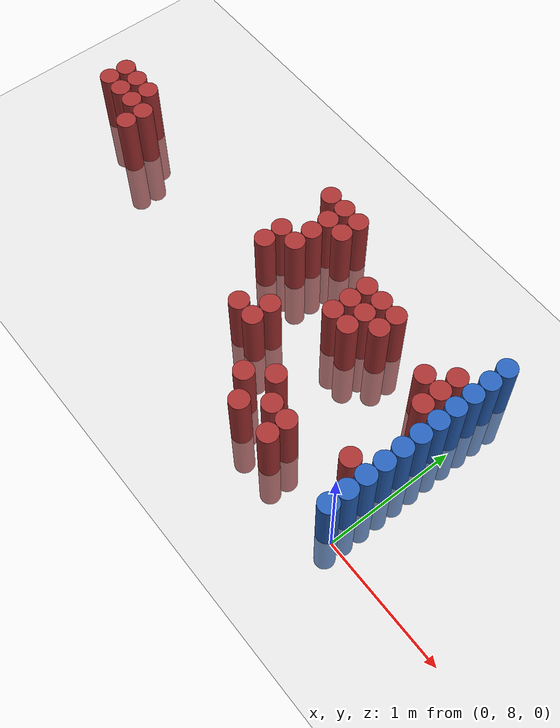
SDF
<sdf version="1.6">
 <world name="default">
  <model name="ground_plane">
   <static>1</static>
   <link name="link">
    <collision name="collision">
     <geometry><plane><normal>0 0 1</normal><size>100 100</size></plane></geometry>
     <surface><friction><ode><mu>100</mu><mu2>50</mu2></ode></friction></surface>
    </collision>
    <visual name="visual">
     <cast_shadows>0</cast_shadows>
     <geometry><plane><normal>0 0 1</normal><size>100 100</size></plane></geometry>
     <material>
      <script><uri>file://media/materials/scripts/gazebo.material</uri><name>Gazebo/Grey</name></script>
     </material>
    </visual>
   </link>
  </model>
  <model name="unit_cylinder_149">
   <static>1</static>
   <pose>-3.825000 8.925000 0.000000 0.000000 0.000000 0.000000</pose>
   <link name="link">
    <inertial>
     <mass>1</mass>
     <inertia><ixx>0.145833</ixx><ixy>0</ixy><ixz>0</ixz><iyy>0.145833</iyy><iyz>0</iyz><izz>0.125</izz></inertia>
    </inertial>
    <collision name="collision">
     <geometry><cylinder><radius>0.075000</radius><length>1</length></cylinder></geometry>
    </collision>
    <visual name="visual">
     <geometry><cylinder><radius>0.075000</radius><length>1</length></cylinder></geometry>
     <material>
      <ambient>0.648000 0.192000 0.192000 1</ambient>
      <diffuse>0.648000 0.192000 0.192000 1</diffuse>
     </material>
     <material>
      <script><name>Gazebo/Grey</name><uri>file://media/materials/scripts/gazebo.material</uri></script>
     </material>
    </visual>
   </link>
  </model>
  <model name="unit_cylinder_150">
   <static>1</static>
   <pose>-3.825000 9.075000 0.000000 0.000000 0.000000 0.000000</pose>
   <link name="link">
    <inertial>
     <mass>1</mass>
     <inertia><ixx>0.145833</ixx><ixy>0</ixy><ixz>0</ixz><iyy>0.145833</iyy><iyz>0</iyz><izz>0.125</izz></inertia>
    </inertial>
    <collision name="collision">
     <geometry><cylinder><radius>0.075000</radius><length>1</length></cylinder></geometry>
    </collision>
    <visual name="visual">
     <geometry><cylinder><radius>0.075000</radius><length>1</length></cylinder></geometry>
     <material>
      <ambient>0.648000 0.192000 0.192000 1</ambient>
      <diffuse>0.648000 0.192000 0.192000 1</diffuse>
     </material>
     <material>
      <script><name>Gazebo/Grey</name><uri>file://media/materials/scripts/gazebo.material</uri></script>
     </material>
    </visual>
   </link>
  </model>
  <model name="unit_cylinder_152">
   <static>1</static>
   <pose>-3.675000 8.925000 0.000000 0.000000 0.000000 0.000000</pose>
   <link name="link">
    <inertial>
     <mass>1</mass>
     <inertia><ixx>0.145833</ixx><ixy>0</ixy><ixz>0</ixz><iyy>0.145833</iyy><iyz>0</iyz><izz>0.125</izz></inertia>
    </inertial>
    <collision name="collision">
     <geometry><cylinder><radius>0.075000</radius><length>1</length></cylinder></geometry>
    </collision>
    <visual name="visual">
     <geometry><cylinder><radius>0.075000</radius><length>1</length></cylinder></geometry>
     <material>
      <ambient>0.648000 0.192000 0.192000 1</ambient>
      <diffuse>0.648000 0.192000 0.192000 1</diffuse>
     </material>
     <material>
      <script><name>Gazebo/Grey</name><uri>file://media/materials/scripts/gazebo.material</uri></script>
     </material>
    </visual>
   </link>
  </model>
  <model name="unit_cylinder_153">
   <static>1</static>
   <pose>-3.675000 9.075000 0.000000 0.000000 0.000000 0.000000</pose>
   <link name="link">
    <inertial>
     <mass>1</mass>
     <inertia><ixx>0.145833</ixx><ixy>0</ixy><ixz>0</ixz><iyy>0.145833</iyy><iyz>0</iyz><izz>0.125</izz></inertia>
    </inertial>
    <collision name="collision">
     <geometry><cylinder><radius>0.075000</radius><length>1</length></cylinder></geometry>
    </collision>
    <visual name="visual">
     <geometry><cylinder><radius>0.075000</radius><length>1</length></cylinder></geometry>
     <material>
      <ambient>0.648000 0.192000 0.192000 1</ambient>
      <diffuse>0.648000 0.192000 0.192000 1</diffuse>
     </material>
     <material>
      <script><name>Gazebo/Grey</name><uri>file://media/materials/scripts/gazebo.material</uri></script>
     </material>
    </visual>
   </link>
  </model>
  <model name="unit_cylinder_155">
   <static>1</static>
   <pose>-3.525000 8.925000 0.000000 0.000000 0.000000 0.000000</pose>
   <link name="link">
    <inertial>
     <mass>1</mass>
     <inertia><ixx>0.145833</ixx><ixy>0</ixy><ixz>0</ixz><iyy>0.145833</iyy><iyz>0</iyz><izz>0.125</izz></inertia>
    </inertial>
    <collision name="collision">
     <geometry><cylinder><radius>0.075000</radius><length>1</length></cylinder></geometry>
    </collision>
    <visual name="visual">
     <geometry><cylinder><radius>0.075000</radius><length>1</length></cylinder></geometry>
     <material>
      <ambient>0.648000 0.192000 0.192000 1</ambient>
      <diffuse>0.648000 0.192000 0.192000 1</diffuse>
     </material>
     <material>
      <script><name>Gazebo/Grey</name><uri>file://media/materials/scripts/gazebo.material</uri></script>
     </material>
    </visual>
   </link>
  </model>
  <model name="unit_cylinder_156">
   <static>1</static>
   <pose>-3.525000 9.075000 0.000000 0.000000 0.000000 0.000000</pose>
   <link name="link">
    <inertial>
     <mass>1</mass>
     <inertia><ixx>0.145833</ixx><ixy>0</ixy><ixz>0</ixz><iyy>0.145833</iyy><iyz>0</iyz><izz>0.125</izz></inertia>
    </inertial>
    <collision name="collision">
     <geometry><cylinder><radius>0.075000</radius><length>1</length></cylinder></geometry>
    </collision>
    <visual name="visual">
     <geometry><cylinder><radius>0.075000</radius><length>1</length></cylinder></geometry>
     <material>
      <ambient>0.648000 0.192000 0.192000 1</ambient>
      <diffuse>0.648000 0.192000 0.192000 1</diffuse>
     </material>
     <material>
      <script><name>Gazebo/Grey</name><uri>file://media/materials/scripts/gazebo.material</uri></script>
     </material>
    </visual>
   </link>
  </model>
  <model name="unit_cylinder_159">
   <static>1</static>
   <pose>-3.375000 8.775000 0.000000 0.000000 0.000000 0.000000</pose>
   <link name="link">
    <inertial>
     <mass>1</mass>
     <inertia><ixx>0.145833</ixx><ixy>0</ixy><ixz>0</ixz><iyy>0.145833</iyy><iyz>0</iyz><izz>0.125</izz></inertia>
    </inertial>
    <collision name="collision">
     <geometry><cylinder><radius>0.075000</radius><length>1</length></cylinder></geometry>
    </collision>
    <visual name="visual">
     <geometry><cylinder><radius>0.075000</radius><length>1</length></cylinder></geometry>
     <material>
      <ambient>0.648000 0.192000 0.192000 1</ambient>
      <diffuse>0.648000 0.192000 0.192000 1</diffuse>
     </material>
     <material>
      <script><name>Gazebo/Grey</name><uri>file://media/materials/scripts/gazebo.material</uri></script>
     </material>
    </visual>
   </link>
  </model>
  <model name="unit_cylinder_160">
   <static>1</static>
   <pose>-3.375000 8.925000 0.000000 0.000000 0.000000 0.000000</pose>
   <link name="link">
    <inertial>
     <mass>1</mass>
     <inertia><ixx>0.145833</ixx><ixy>0</ixy><ixz>0</ixz><iyy>0.145833</iyy><iyz>0</iyz><izz>0.125</izz></inertia>
    </inertial>
    <collision name="collision">
     <geometry><cylinder><radius>0.075000</radius><length>1</length></cylinder></geometry>
    </collision>
    <visual name="visual">
     <geometry><cylinder><radius>0.075000</radius><length>1</length></cylinder></geometry>
     <material>
      <ambient>0.648000 0.192000 0.192000 1</ambient>
      <diffuse>0.648000 0.192000 0.192000 1</diffuse>
     </material>
     <material>
      <script><name>Gazebo/Grey</name><uri>file://media/materials/scripts/gazebo.material</uri></script>
     </material>
    </visual>
   </link>
  </model>
  <model name="unit_cylinder_175">
   <static>1</static>
   <pose>-1.875000 8.925000 0.000000 0.000000 0.000000 0.000000</pose>
   <link name="link">
    <inertial>
     <mass>1</mass>
     <inertia><ixx>0.145833</ixx><ixy>0</ixy><ixz>0</ixz><iyy>0.145833</iyy><iyz>0</iyz><izz>0.125</izz></inertia>
    </inertial>
    <collision name="collision">
     <geometry><cylinder><radius>0.075000</radius><length>1</length></cylinder></geometry>
    </collision>
    <visual name="visual">
     <geometry><cylinder><radius>0.075000</radius><length>1</length></cylinder></geometry>
     <material>
      <ambient>0.648000 0.192000 0.192000 1</ambient>
      <diffuse>0.648000 0.192000 0.192000 1</diffuse>
     </material>
     <material>
      <script><name>Gazebo/Grey</name><uri>file://media/materials/scripts/gazebo.material</uri></script>
     </material>
    </visual>
   </link>
  </model>
  <model name="unit_cylinder_176">
   <static>1</static>
   <pose>-1.875000 9.075000 0.000000 0.000000 0.000000 0.000000</pose>
   <link name="link">
    <inertial>
     <mass>1</mass>
     <inertia><ixx>0.145833</ixx><ixy>0</ixy><ixz>0</ixz><iyy>0.145833</iyy><iyz>0</iyz><izz>0.125</izz></inertia>
    </inertial>
    <collision name="collision">
     <geometry><cylinder><radius>0.075000</radius><length>1</length></cylinder></geometry>
    </collision>
    <visual name="visual">
     <geometry><cylinder><radius>0.075000</radius><length>1</length></cylinder></geometry>
     <material>
      <ambient>0.648000 0.192000 0.192000 1</ambient>
      <diffuse>0.648000 0.192000 0.192000 1</diffuse>
     </material>
     <material>
      <script><name>Gazebo/Grey</name><uri>file://media/materials/scripts/gazebo.material</uri></script>
     </material>
    </visual>
   </link>
  </model>
  <model name="unit_cylinder_177">
   <static>1</static>
   <pose>-1.875000 9.525000 0.000000 0.000000 0.000000 0.000000</pose>
   <link name="link">
    <inertial>
     <mass>1</mass>
     <inertia><ixx>0.145833</ixx><ixy>0</ixy><ixz>0</ixz><iyy>0.145833</iyy><iyz>0</iyz><izz>0.125</izz></inertia>
    </inertial>
    <collision name="collision">
     <geometry><cylinder><radius>0.075000</radius><length>1</length></cylinder></geometry>
    </collision>
    <visual name="visual">
     <geometry><cylinder><radius>0.075000</radius><length>1</length></cylinder></geometry>
     <material>
      <ambient>0.648000 0.192000 0.192000 1</ambient>
      <diffuse>0.648000 0.192000 0.192000 1</diffuse>
     </material>
     <material>
      <script><name>Gazebo/Grey</name><uri>file://media/materials/scripts/gazebo.material</uri></script>
     </material>
    </visual>
   </link>
  </model>
  <model name="unit_cylinder_179">
   <static>1</static>
   <pose>-1.725000 9.075000 0.000000 0.000000 0.000000 0.000000</pose>
   <link name="link">
    <inertial>
     <mass>1</mass>
     <inertia><ixx>0.145833</ixx><ixy>0</ixy><ixz>0</ixz><iyy>0.145833</iyy><iyz>0</iyz><izz>0.125</izz></inertia>
    </inertial>
    <collision name="collision">
     <geometry><cylinder><radius>0.075000</radius><length>1</length></cylinder></geometry>
    </collision>
    <visual name="visual">
     <geometry><cylinder><radius>0.075000</radius><length>1</length></cylinder></geometry>
     <material>
      <ambient>0.648000 0.192000 0.192000 1</ambient>
      <diffuse>0.648000 0.192000 0.192000 1</diffuse>
     </material>
     <material>
      <script><name>Gazebo/Grey</name><uri>file://media/materials/scripts/gazebo.material</uri></script>
     </material>
    </visual>
   </link>
  </model>
  <model name="unit_cylinder_180">
   <static>1</static>
   <pose>-1.725000 9.225000 0.000000 0.000000 0.000000 0.000000</pose>
   <link name="link">
    <inertial>
     <mass>1</mass>
     <inertia><ixx>0.145833</ixx><ixy>0</ixy><ixz>0</ixz><iyy>0.145833</iyy><iyz>0</iyz><izz>0.125</izz></inertia>
    </inertial>
    <collision name="collision">
     <geometry><cylinder><radius>0.075000</radius><length>1</length></cylinder></geometry>
    </collision>
    <visual name="visual">
     <geometry><cylinder><radius>0.075000</radius><length>1</length></cylinder></geometry>
     <material>
      <ambient>0.648000 0.192000 0.192000 1</ambient>
      <diffuse>0.648000 0.192000 0.192000 1</diffuse>
     </material>
     <material>
      <script><name>Gazebo/Grey</name><uri>file://media/materials/scripts/gazebo.material</uri></script>
     </material>
    </visual>
   </link>
  </model>
  <model name="unit_cylinder_181">
   <static>1</static>
   <pose>-1.725000 9.375000 0.000000 0.000000 0.000000 0.000000</pose>
   <link name="link">
    <inertial>
     <mass>1</mass>
     <inertia><ixx>0.145833</ixx><ixy>0</ixy><ixz>0</ixz><iyy>0.145833</iyy><iyz>0</iyz><izz>0.125</izz></inertia>
    </inertial>
    <collision name="collision">
     <geometry><cylinder><radius>0.075000</radius><length>1</length></cylinder></geometry>
    </collision>
    <visual name="visual">
     <geometry><cylinder><radius>0.075000</radius><length>1</length></cylinder></geometry>
     <material>
      <ambient>0.648000 0.192000 0.192000 1</ambient>
      <diffuse>0.648000 0.192000 0.192000 1</diffuse>
     </material>
     <material>
      <script><name>Gazebo/Grey</name><uri>file://media/materials/scripts/gazebo.material</uri></script>
     </material>
    </visual>
   </link>
  </model>
  <model name="unit_cylinder_182">
   <static>1</static>
   <pose>-1.725000 9.525000 0.000000 0.000000 0.000000 0.000000</pose>
   <link name="link">
    <inertial>
     <mass>1</mass>
     <inertia><ixx>0.145833</ixx><ixy>0</ixy><ixz>0</ixz><iyy>0.145833</iyy><iyz>0</iyz><izz>0.125</izz></inertia>
    </inertial>
    <collision name="collision">
     <geometry><cylinder><radius>0.075000</radius><length>1</length></cylinder></geometry>
    </collision>
    <visual name="visual">
     <geometry><cylinder><radius>0.075000</radius><length>1</length></cylinder></geometry>
     <material>
      <ambient>0.648000 0.192000 0.192000 1</ambient>
      <diffuse>0.648000 0.192000 0.192000 1</diffuse>
     </material>
     <material>
      <script><name>Gazebo/Grey</name><uri>file://media/materials/scripts/gazebo.material</uri></script>
     </material>
    </visual>
   </link>
  </model>
  <model name="unit_cylinder_185">
   <static>1</static>
   <pose>-1.575000 8.475000 0.000000 0.000000 0.000000 0.000000</pose>
   <link name="link">
    <inertial>
     <mass>1</mass>
     <inertia><ixx>0.145833</ixx><ixy>0</ixy><ixz>0</ixz><iyy>0.145833</iyy><iyz>0</iyz><izz>0.125</izz></inertia>
    </inertial>
    <collision name="collision">
     <geometry><cylinder><radius>0.075000</radius><length>1</length></cylinder></geometry>
    </collision>
    <visual name="visual">
     <geometry><cylinder><radius>0.075000</radius><length>1</length></cylinder></geometry>
     <material>
      <ambient>0.648000 0.192000 0.192000 1</ambient>
      <diffuse>0.648000 0.192000 0.192000 1</diffuse>
     </material>
     <material>
      <script><name>Gazebo/Grey</name><uri>file://media/materials/scripts/gazebo.material</uri></script>
     </material>
    </visual>
   </link>
  </model>
  <model name="unit_cylinder_186">
   <static>1</static>
   <pose>-1.575000 9.375000 0.000000 0.000000 0.000000 0.000000</pose>
   <link name="link">
    <inertial>
     <mass>1</mass>
     <inertia><ixx>0.145833</ixx><ixy>0</ixy><ixz>0</ixz><iyy>0.145833</iyy><iyz>0</iyz><izz>0.125</izz></inertia>
    </inertial>
    <collision name="collision">
     <geometry><cylinder><radius>0.075000</radius><length>1</length></cylinder></geometry>
    </collision>
    <visual name="visual">
     <geometry><cylinder><radius>0.075000</radius><length>1</length></cylinder></geometry>
     <material>
      <ambient>0.648000 0.192000 0.192000 1</ambient>
      <diffuse>0.648000 0.192000 0.192000 1</diffuse>
     </material>
     <material>
      <script><name>Gazebo/Grey</name><uri>file://media/materials/scripts/gazebo.material</uri></script>
     </material>
    </visual>
   </link>
  </model>
  <model name="unit_cylinder_187">
   <static>1</static>
   <pose>-1.575000 9.525000 0.000000 0.000000 0.000000 0.000000</pose>
   <link name="link">
    <inertial>
     <mass>1</mass>
     <inertia><ixx>0.145833</ixx><ixy>0</ixy><ixz>0</ixz><iyy>0.145833</iyy><iyz>0</iyz><izz>0.125</izz></inertia>
    </inertial>
    <collision name="collision">
     <geometry><cylinder><radius>0.075000</radius><length>1</length></cylinder></geometry>
    </collision>
    <visual name="visual">
     <geometry><cylinder><radius>0.075000</radius><length>1</length></cylinder></geometry>
     <material>
      <ambient>0.648000 0.192000 0.192000 1</ambient>
      <diffuse>0.648000 0.192000 0.192000 1</diffuse>
     </material>
     <material>
      <script><name>Gazebo/Grey</name><uri>file://media/materials/scripts/gazebo.material</uri></script>
     </material>
    </visual>
   </link>
  </model>
  <model name="unit_cylinder_191">
   <static>1</static>
   <pose>-1.425000 8.475000 0.000000 0.000000 0.000000 0.000000</pose>
   <link name="link">
    <inertial>
     <mass>1</mass>
     <inertia><ixx>0.145833</ixx><ixy>0</ixy><ixz>0</ixz><iyy>0.145833</iyy><iyz>0</iyz><izz>0.125</izz></inertia>
    </inertial>
    <collision name="collision">
     <geometry><cylinder><radius>0.075000</radius><length>1</length></cylinder></geometry>
    </collision>
    <visual name="visual">
     <geometry><cylinder><radius>0.075000</radius><length>1</length></cylinder></geometry>
     <material>
      <ambient>0.648000 0.192000 0.192000 1</ambient>
      <diffuse>0.648000 0.192000 0.192000 1</diffuse>
     </material>
     <material>
      <script><name>Gazebo/Grey</name><uri>file://media/materials/scripts/gazebo.material</uri></script>
     </material>
    </visual>
   </link>
  </model>
  <model name="unit_cylinder_192">
   <static>1</static>
   <pose>-1.425000 8.625000 0.000000 0.000000 0.000000 0.000000</pose>
   <link name="link">
    <inertial>
     <mass>1</mass>
     <inertia><ixx>0.145833</ixx><ixy>0</ixy><ixz>0</ixz><iyy>0.145833</iyy><iyz>0</iyz><izz>0.125</izz></inertia>
    </inertial>
    <collision name="collision">
     <geometry><cylinder><radius>0.075000</radius><length>1</length></cylinder></geometry>
    </collision>
    <visual name="visual">
     <geometry><cylinder><radius>0.075000</radius><length>1</length></cylinder></geometry>
     <material>
      <ambient>0.648000 0.192000 0.192000 1</ambient>
      <diffuse>0.648000 0.192000 0.192000 1</diffuse>
     </material>
     <material>
      <script><name>Gazebo/Grey</name><uri>file://media/materials/scripts/gazebo.material</uri></script>
     </material>
    </visual>
   </link>
  </model>
  <model name="unit_cylinder_196">
   <static>1</static>
   <pose>-1.125000 8.175000 0.000000 0.000000 0.000000 0.000000</pose>
   <link name="link">
    <inertial>
     <mass>1</mass>
     <inertia><ixx>0.145833</ixx><ixy>0</ixy><ixz>0</ixz><iyy>0.145833</iyy><iyz>0</iyz><izz>0.125</izz></inertia>
    </inertial>
    <collision name="collision">
     <geometry><cylinder><radius>0.075000</radius><length>1</length></cylinder></geometry>
    </collision>
    <visual name="visual">
     <geometry><cylinder><radius>0.075000</radius><length>1</length></cylinder></geometry>
     <material>
      <ambient>0.648000 0.192000 0.192000 1</ambient>
      <diffuse>0.648000 0.192000 0.192000 1</diffuse>
     </material>
     <material>
      <script><name>Gazebo/Grey</name><uri>file://media/materials/scripts/gazebo.material</uri></script>
     </material>
    </visual>
   </link>
  </model>
  <model name="unit_cylinder_197">
   <static>1</static>
   <pose>-1.125000 8.925000 0.000000 0.000000 0.000000 0.000000</pose>
   <link name="link">
    <inertial>
     <mass>1</mass>
     <inertia><ixx>0.145833</ixx><ixy>0</ixy><ixz>0</ixz><iyy>0.145833</iyy><iyz>0</iyz><izz>0.125</izz></inertia>
    </inertial>
    <collision name="collision">
     <geometry><cylinder><radius>0.075000</radius><length>1</length></cylinder></geometry>
    </collision>
    <visual name="visual">
     <geometry><cylinder><radius>0.075000</radius><length>1</length></cylinder></geometry>
     <material>
      <ambient>0.648000 0.192000 0.192000 1</ambient>
      <diffuse>0.648000 0.192000 0.192000 1</diffuse>
     </material>
     <material>
      <script><name>Gazebo/Grey</name><uri>file://media/materials/scripts/gazebo.material</uri></script>
     </material>
    </visual>
   </link>
  </model>
  <model name="unit_cylinder_198">
   <static>1</static>
   <pose>-1.125000 9.075000 0.000000 0.000000 0.000000 0.000000</pose>
   <link name="link">
    <inertial>
     <mass>1</mass>
     <inertia><ixx>0.145833</ixx><ixy>0</ixy><ixz>0</ixz><iyy>0.145833</iyy><iyz>0</iyz><izz>0.125</izz></inertia>
    </inertial>
    <collision name="collision">
     <geometry><cylinder><radius>0.075000</radius><length>1</length></cylinder></geometry>
    </collision>
    <visual name="visual">
     <geometry><cylinder><radius>0.075000</radius><length>1</length></cylinder></geometry>
     <material>
      <ambient>0.648000 0.192000 0.192000 1</ambient>
      <diffuse>0.648000 0.192000 0.192000 1</diffuse>
     </material>
     <material>
      <script><name>Gazebo/Grey</name><uri>file://media/materials/scripts/gazebo.material</uri></script>
     </material>
    </visual>
   </link>
  </model>
  <model name="unit_cylinder_199">
   <static>1</static>
   <pose>-1.125000 9.225000 0.000000 0.000000 0.000000 0.000000</pose>
   <link name="link">
    <inertial>
     <mass>1</mass>
     <inertia><ixx>0.145833</ixx><ixy>0</ixy><ixz>0</ixz><iyy>0.145833</iyy><iyz>0</iyz><izz>0.125</izz></inertia>
    </inertial>
    <collision name="collision">
     <geometry><cylinder><radius>0.075000</radius><length>1</length></cylinder></geometry>
    </collision>
    <visual name="visual">
     <geometry><cylinder><radius>0.075000</radius><length>1</length></cylinder></geometry>
     <material>
      <ambient>0.648000 0.192000 0.192000 1</ambient>
      <diffuse>0.648000 0.192000 0.192000 1</diffuse>
     </material>
     <material>
      <script><name>Gazebo/Grey</name><uri>file://media/materials/scripts/gazebo.material</uri></script>
     </material>
    </visual>
   </link>
  </model>
  <model name="unit_cylinder_200">
   <static>1</static>
   <pose>-0.975000 8.025000 0.000000 0.000000 0.000000 0.000000</pose>
   <link name="link">
    <inertial>
     <mass>1</mass>
     <inertia><ixx>0.145833</ixx><ixy>0</ixy><ixz>0</ixz><iyy>0.145833</iyy><iyz>0</iyz><izz>0.125</izz></inertia>
    </inertial>
    <collision name="collision">
     <geometry><cylinder><radius>0.075000</radius><length>1</length></cylinder></geometry>
    </collision>
    <visual name="visual">
     <geometry><cylinder><radius>0.075000</radius><length>1</length></cylinder></geometry>
     <material>
      <ambient>0.648000 0.192000 0.192000 1</ambient>
      <diffuse>0.648000 0.192000 0.192000 1</diffuse>
     </material>
     <material>
      <script><name>Gazebo/Grey</name><uri>file://media/materials/scripts/gazebo.material</uri></script>
     </material>
    </visual>
   </link>
  </model>
  <model name="unit_cylinder_201">
   <static>1</static>
   <pose>-0.975000 8.325000 0.000000 0.000000 0.000000 0.000000</pose>
   <link name="link">
    <inertial>
     <mass>1</mass>
     <inertia><ixx>0.145833</ixx><ixy>0</ixy><ixz>0</ixz><iyy>0.145833</iyy><iyz>0</iyz><izz>0.125</izz></inertia>
    </inertial>
    <collision name="collision">
     <geometry><cylinder><radius>0.075000</radius><length>1</length></cylinder></geometry>
    </collision>
    <visual name="visual">
     <geometry><cylinder><radius>0.075000</radius><length>1</length></cylinder></geometry>
     <material>
      <ambient>0.648000 0.192000 0.192000 1</ambient>
      <diffuse>0.648000 0.192000 0.192000 1</diffuse>
     </material>
     <material>
      <script><name>Gazebo/Grey</name><uri>file://media/materials/scripts/gazebo.material</uri></script>
     </material>
    </visual>
   </link>
  </model>
  <model name="unit_cylinder_202">
   <static>1</static>
   <pose>-0.975000 8.925000 0.000000 0.000000 0.000000 0.000000</pose>
   <link name="link">
    <inertial>
     <mass>1</mass>
     <inertia><ixx>0.145833</ixx><ixy>0</ixy><ixz>0</ixz><iyy>0.145833</iyy><iyz>0</iyz><izz>0.125</izz></inertia>
    </inertial>
    <collision name="collision">
     <geometry><cylinder><radius>0.075000</radius><length>1</length></cylinder></geometry>
    </collision>
    <visual name="visual">
     <geometry><cylinder><radius>0.075000</radius><length>1</length></cylinder></geometry>
     <material>
      <ambient>0.648000 0.192000 0.192000 1</ambient>
      <diffuse>0.648000 0.192000 0.192000 1</diffuse>
     </material>
     <material>
      <script><name>Gazebo/Grey</name><uri>file://media/materials/scripts/gazebo.material</uri></script>
     </material>
    </visual>
   </link>
  </model>
  <model name="unit_cylinder_203">
   <static>1</static>
   <pose>-0.975000 9.075000 0.000000 0.000000 0.000000 0.000000</pose>
   <link name="link">
    <inertial>
     <mass>1</mass>
     <inertia><ixx>0.145833</ixx><ixy>0</ixy><ixz>0</ixz><iyy>0.145833</iyy><iyz>0</iyz><izz>0.125</izz></inertia>
    </inertial>
    <collision name="collision">
     <geometry><cylinder><radius>0.075000</radius><length>1</length></cylinder></geometry>
    </collision>
    <visual name="visual">
     <geometry><cylinder><radius>0.075000</radius><length>1</length></cylinder></geometry>
     <material>
      <ambient>0.648000 0.192000 0.192000 1</ambient>
      <diffuse>0.648000 0.192000 0.192000 1</diffuse>
     </material>
     <material>
      <script><name>Gazebo/Grey</name><uri>file://media/materials/scripts/gazebo.material</uri></script>
     </material>
    </visual>
   </link>
  </model>
  <model name="unit_cylinder_204">
   <static>1</static>
   <pose>-0.975000 9.225000 0.000000 0.000000 0.000000 0.000000</pose>
   <link name="link">
    <inertial>
     <mass>1</mass>
     <inertia><ixx>0.145833</ixx><ixy>0</ixy><ixz>0</ixz><iyy>0.145833</iyy><iyz>0</iyz><izz>0.125</izz></inertia>
    </inertial>
    <collision name="collision">
     <geometry><cylinder><radius>0.075000</radius><length>1</length></cylinder></geometry>
    </collision>
    <visual name="visual">
     <geometry><cylinder><radius>0.075000</radius><length>1</length></cylinder></geometry>
     <material>
      <ambient>0.648000 0.192000 0.192000 1</ambient>
      <diffuse>0.648000 0.192000 0.192000 1</diffuse>
     </material>
     <material>
      <script><name>Gazebo/Grey</name><uri>file://media/materials/scripts/gazebo.material</uri></script>
     </material>
    </visual>
   </link>
  </model>
  <model name="unit_cylinder_205">
   <static>1</static>
   <pose>-0.825000 8.175000 0.000000 0.000000 0.000000 0.000000</pose>
   <link name="link">
    <inertial>
     <mass>1</mass>
     <inertia><ixx>0.145833</ixx><ixy>0</ixy><ixz>0</ixz><iyy>0.145833</iyy><iyz>0</iyz><izz>0.125</izz></inertia>
    </inertial>
    <collision name="collision">
     <geometry><cylinder><radius>0.075000</radius><length>1</length></cylinder></geometry>
    </collision>
    <visual name="visual">
     <geometry><cylinder><radius>0.075000</radius><length>1</length></cylinder></geometry>
     <material>
      <ambient>0.648000 0.192000 0.192000 1</ambient>
      <diffuse>0.648000 0.192000 0.192000 1</diffuse>
     </material>
     <material>
      <script><name>Gazebo/Grey</name><uri>file://media/materials/scripts/gazebo.material</uri></script>
     </material>
    </visual>
   </link>
  </model>
  <model name="unit_cylinder_206">
   <static>1</static>
   <pose>-0.825000 9.075000 0.000000 0.000000 0.000000 0.000000</pose>
   <link name="link">
    <inertial>
     <mass>1</mass>
     <inertia><ixx>0.145833</ixx><ixy>0</ixy><ixz>0</ixz><iyy>0.145833</iyy><iyz>0</iyz><izz>0.125</izz></inertia>
    </inertial>
    <collision name="collision">
     <geometry><cylinder><radius>0.075000</radius><length>1</length></cylinder></geometry>
    </collision>
    <visual name="visual">
     <geometry><cylinder><radius>0.075000</radius><length>1</length></cylinder></geometry>
     <material>
      <ambient>0.648000 0.192000 0.192000 1</ambient>
      <diffuse>0.648000 0.192000 0.192000 1</diffuse>
     </material>
     <material>
      <script><name>Gazebo/Grey</name><uri>file://media/materials/scripts/gazebo.material</uri></script>
     </material>
    </visual>
   </link>
  </model>
  <model name="unit_cylinder_207">
   <static>1</static>
   <pose>-0.825000 9.225000 0.000000 0.000000 0.000000 0.000000</pose>
   <link name="link">
    <inertial>
     <mass>1</mass>
     <inertia><ixx>0.145833</ixx><ixy>0</ixy><ixz>0</ixz><iyy>0.145833</iyy><iyz>0</iyz><izz>0.125</izz></inertia>
    </inertial>
    <collision name="collision">
     <geometry><cylinder><radius>0.075000</radius><length>1</length></cylinder></geometry>
    </collision>
    <visual name="visual">
     <geometry><cylinder><radius>0.075000</radius><length>1</length></cylinder></geometry>
     <material>
      <ambient>0.648000 0.192000 0.192000 1</ambient>
      <diffuse>0.648000 0.192000 0.192000 1</diffuse>
     </material>
     <material>
      <script><name>Gazebo/Grey</name><uri>file://media/materials/scripts/gazebo.material</uri></script>
     </material>
    </visual>
   </link>
  </model>
  <model name="unit_cylinder_208">
   <static>1</static>
   <pose>-0.675000 8.025000 0.000000 0.000000 0.000000 0.000000</pose>
   <link name="link">
    <inertial>
     <mass>1</mass>
     <inertia><ixx>0.145833</ixx><ixy>0</ixy><ixz>0</ixz><iyy>0.145833</iyy><iyz>0</iyz><izz>0.125</izz></inertia>
    </inertial>
    <collision name="collision">
     <geometry><cylinder><radius>0.075000</radius><length>1</length></cylinder></geometry>
    </collision>
    <visual name="visual">
     <geometry><cylinder><radius>0.075000</radius><length>1</length></cylinder></geometry>
     <material>
      <ambient>0.648000 0.192000 0.192000 1</ambient>
      <diffuse>0.648000 0.192000 0.192000 1</diffuse>
     </material>
     <material>
      <script><name>Gazebo/Grey</name><uri>file://media/materials/scripts/gazebo.material</uri></script>
     </material>
    </visual>
   </link>
  </model>
  <model name="unit_cylinder_209">
   <static>1</static>
   <pose>-0.675000 8.175000 0.000000 0.000000 0.000000 0.000000</pose>
   <link name="link">
    <inertial>
     <mass>1</mass>
     <inertia><ixx>0.145833</ixx><ixy>0</ixy><ixz>0</ixz><iyy>0.145833</iyy><iyz>0</iyz><izz>0.125</izz></inertia>
    </inertial>
    <collision name="collision">
     <geometry><cylinder><radius>0.075000</radius><length>1</length></cylinder></geometry>
    </collision>
    <visual name="visual">
     <geometry><cylinder><radius>0.075000</radius><length>1</length></cylinder></geometry>
     <material>
      <ambient>0.648000 0.192000 0.192000 1</ambient>
      <diffuse>0.648000 0.192000 0.192000 1</diffuse>
     </material>
     <material>
      <script><name>Gazebo/Grey</name><uri>file://media/materials/scripts/gazebo.material</uri></script>
     </material>
    </visual>
   </link>
  </model>
  <model name="unit_cylinder_210">
   <static>1</static>
   <pose>-0.375000 9.075000 0.000000 0.000000 0.000000 0.000000</pose>
   <link name="link">
    <inertial>
     <mass>1</mass>
     <inertia><ixx>0.145833</ixx><ixy>0</ixy><ixz>0</ixz><iyy>0.145833</iyy><iyz>0</iyz><izz>0.125</izz></inertia>
    </inertial>
    <collision name="collision">
     <geometry><cylinder><radius>0.075000</radius><length>1</length></cylinder></geometry>
    </collision>
    <visual name="visual">
     <geometry><cylinder><radius>0.075000</radius><length>1</length></cylinder></geometry>
     <material>
      <ambient>0.648000 0.192000 0.192000 1</ambient>
      <diffuse>0.648000 0.192000 0.192000 1</diffuse>
     </material>
     <material>
      <script><name>Gazebo/Grey</name><uri>file://media/materials/scripts/gazebo.material</uri></script>
     </material>
    </visual>
   </link>
  </model>
  <model name="unit_cylinder_217">
   <static>1</static>
   <pose>-0.225000 8.325000 0.000000 0.000000 0.000000 0.000000</pose>
   <link name="link">
    <inertial>
     <mass>1</mass>
     <inertia><ixx>0.145833</ixx><ixy>0</ixy><ixz>0</ixz><iyy>0.145833</iyy><iyz>0</iyz><izz>0.125</izz></inertia>
    </inertial>
    <collision name="collision">
     <geometry><cylinder><radius>0.075000</radius><length>1</length></cylinder></geometry>
    </collision>
    <visual name="visual">
     <geometry><cylinder><radius>0.075000</radius><length>1</length></cylinder></geometry>
     <material>
      <ambient>0.648000 0.192000 0.192000 1</ambient>
      <diffuse>0.648000 0.192000 0.192000 1</diffuse>
     </material>
     <material>
      <script><name>Gazebo/Grey</name><uri>file://media/materials/scripts/gazebo.material</uri></script>
     </material>
    </visual>
   </link>
  </model>
  <model name="unit_cylinder_218">
   <static>1</static>
   <pose>-0.225000 8.925000 0.000000 0.000000 0.000000 0.000000</pose>
   <link name="link">
    <inertial>
     <mass>1</mass>
     <inertia><ixx>0.145833</ixx><ixy>0</ixy><ixz>0</ixz><iyy>0.145833</iyy><iyz>0</iyz><izz>0.125</izz></inertia>
    </inertial>
    <collision name="collision">
     <geometry><cylinder><radius>0.075000</radius><length>1</length></cylinder></geometry>
    </collision>
    <visual name="visual">
     <geometry><cylinder><radius>0.075000</radius><length>1</length></cylinder></geometry>
     <material>
      <ambient>0.648000 0.192000 0.192000 1</ambient>
      <diffuse>0.648000 0.192000 0.192000 1</diffuse>
     </material>
     <material>
      <script><name>Gazebo/Grey</name><uri>file://media/materials/scripts/gazebo.material</uri></script>
     </material>
    </visual>
   </link>
  </model>
  <model name="unit_cylinder_219">
   <static>1</static>
   <pose>-0.225000 9.075000 0.000000 0.000000 0.000000 0.000000</pose>
   <link name="link">
    <inertial>
     <mass>1</mass>
     <inertia><ixx>0.145833</ixx><ixy>0</ixy><ixz>0</ixz><iyy>0.145833</iyy><iyz>0</iyz><izz>0.125</izz></inertia>
    </inertial>
    <collision name="collision">
     <geometry><cylinder><radius>0.075000</radius><length>1</length></cylinder></geometry>
    </collision>
    <visual name="visual">
     <geometry><cylinder><radius>0.075000</radius><length>1</length></cylinder></geometry>
     <material>
      <ambient>0.648000 0.192000 0.192000 1</ambient>
      <diffuse>0.648000 0.192000 0.192000 1</diffuse>
     </material>
     <material>
      <script><name>Gazebo/Grey</name><uri>file://media/materials/scripts/gazebo.material</uri></script>
     </material>
    </visual>
   </link>
  </model>
  <model name="unit_cylinder_220">
   <static>1</static>
   <pose>-0.225000 9.225000 0.000000 0.000000 0.000000 0.000000</pose>
   <link name="link">
    <inertial>
     <mass>1</mass>
     <inertia><ixx>0.145833</ixx><ixy>0</ixy><ixz>0</ixz><iyy>0.145833</iyy><iyz>0</iyz><izz>0.125</izz></inertia>
    </inertial>
    <collision name="collision">
     <geometry><cylinder><radius>0.075000</radius><length>1</length></cylinder></geometry>
    </collision>
    <visual name="visual">
     <geometry><cylinder><radius>0.075000</radius><length>1</length></cylinder></geometry>
     <material>
      <ambient>0.648000 0.192000 0.192000 1</ambient>
      <diffuse>0.648000 0.192000 0.192000 1</diffuse>
     </material>
     <material>
      <script><name>Gazebo/Grey</name><uri>file://media/materials/scripts/gazebo.material</uri></script>
     </material>
    </visual>
   </link>
  </model>
  <model name="unit_cylinder_240">
   <static>1</static>
   <pose>-0.075000 8.025000 0.000000 0.000000 0.000000 0.000000</pose>
   <link name="link">
    <inertial>
     <mass>1</mass>
     <inertia><ixx>0.145833</ixx><ixy>0</ixy><ixz>0</ixz><iyy>0.145833</iyy><iyz>0</iyz><izz>0.125</izz></inertia>
    </inertial>
    <collision name="collision">
     <geometry><cylinder><radius>0.075000</radius><length>1</length></cylinder></geometry>
    </collision>
    <visual name="visual">
     <geometry><cylinder><radius>0.075000</radius><length>1</length></cylinder></geometry>
     <material>
      <ambient>0.152000 0.379000 0.720000 1</ambient>
      <diffuse>0.152000 0.379000 0.720000 1</diffuse>
     </material>
     <material>
      <script><name>Gazebo/Grey</name><uri>file://media/materials/scripts/gazebo.material</uri></script>
     </material>
    </visual>
   </link>
  </model>
  <model name="unit_cylinder_241">
   <static>1</static>
   <pose>-0.075000 8.175000 0.000000 0.000000 0.000000 0.000000</pose>
   <link name="link">
    <inertial>
     <mass>1</mass>
     <inertia><ixx>0.145833</ixx><ixy>0</ixy><ixz>0</ixz><iyy>0.145833</iyy><iyz>0</iyz><izz>0.125</izz></inertia>
    </inertial>
    <collision name="collision">
     <geometry><cylinder><radius>0.075000</radius><length>1</length></cylinder></geometry>
    </collision>
    <visual name="visual">
     <geometry><cylinder><radius>0.075000</radius><length>1</length></cylinder></geometry>
     <material>
      <ambient>0.152000 0.379000 0.720000 1</ambient>
      <diffuse>0.152000 0.379000 0.720000 1</diffuse>
     </material>
     <material>
      <script><name>Gazebo/Grey</name><uri>file://media/materials/scripts/gazebo.material</uri></script>
     </material>
    </visual>
   </link>
  </model>
  <model name="unit_cylinder_242">
   <static>1</static>
   <pose>-0.075000 8.325000 0.000000 0.000000 0.000000 0.000000</pose>
   <link name="link">
    <inertial>
     <mass>1</mass>
     <inertia><ixx>0.145833</ixx><ixy>0</ixy><ixz>0</ixz><iyy>0.145833</iyy><iyz>0</iyz><izz>0.125</izz></inertia>
    </inertial>
    <collision name="collision">
     <geometry><cylinder><radius>0.075000</radius><length>1</length></cylinder></geometry>
    </collision>
    <visual name="visual">
     <geometry><cylinder><radius>0.075000</radius><length>1</length></cylinder></geometry>
     <material>
      <ambient>0.152000 0.379000 0.720000 1</ambient>
      <diffuse>0.152000 0.379000 0.720000 1</diffuse>
     </material>
     <material>
      <script><name>Gazebo/Grey</name><uri>file://media/materials/scripts/gazebo.material</uri></script>
     </material>
    </visual>
   </link>
  </model>
  <model name="unit_cylinder_243">
   <static>1</static>
   <pose>-0.075000 8.475000 0.000000 0.000000 0.000000 0.000000</pose>
   <link name="link">
    <inertial>
     <mass>1</mass>
     <inertia><ixx>0.145833</ixx><ixy>0</ixy><ixz>0</ixz><iyy>0.145833</iyy><iyz>0</iyz><izz>0.125</izz></inertia>
    </inertial>
    <collision name="collision">
     <geometry><cylinder><radius>0.075000</radius><length>1</length></cylinder></geometry>
    </collision>
    <visual name="visual">
     <geometry><cylinder><radius>0.075000</radius><length>1</length></cylinder></geometry>
     <material>
      <ambient>0.152000 0.379000 0.720000 1</ambient>
      <diffuse>0.152000 0.379000 0.720000 1</diffuse>
     </material>
     <material>
      <script><name>Gazebo/Grey</name><uri>file://media/materials/scripts/gazebo.material</uri></script>
     </material>
    </visual>
   </link>
  </model>
  <model name="unit_cylinder_244">
   <static>1</static>
   <pose>-0.075000 8.625000 0.000000 0.000000 0.000000 0.000000</pose>
   <link name="link">
    <inertial>
     <mass>1</mass>
     <inertia><ixx>0.145833</ixx><ixy>0</ixy><ixz>0</ixz><iyy>0.145833</iyy><iyz>0</iyz><izz>0.125</izz></inertia>
    </inertial>
    <collision name="collision">
     <geometry><cylinder><radius>0.075000</radius><length>1</length></cylinder></geometry>
    </collision>
    <visual name="visual">
     <geometry><cylinder><radius>0.075000</radius><length>1</length></cylinder></geometry>
     <material>
      <ambient>0.152000 0.379000 0.720000 1</ambient>
      <diffuse>0.152000 0.379000 0.720000 1</diffuse>
     </material>
     <material>
      <script><name>Gazebo/Grey</name><uri>file://media/materials/scripts/gazebo.material</uri></script>
     </material>
    </visual>
   </link>
  </model>
  <model name="unit_cylinder_245">
   <static>1</static>
   <pose>-0.075000 8.775000 0.000000 0.000000 0.000000 0.000000</pose>
   <link name="link">
    <inertial>
     <mass>1</mass>
     <inertia><ixx>0.145833</ixx><ixy>0</ixy><ixz>0</ixz><iyy>0.145833</iyy><iyz>0</iyz><izz>0.125</izz></inertia>
    </inertial>
    <collision name="collision">
     <geometry><cylinder><radius>0.075000</radius><length>1</length></cylinder></geometry>
    </collision>
    <visual name="visual">
     <geometry><cylinder><radius>0.075000</radius><length>1</length></cylinder></geometry>
     <material>
      <ambient>0.152000 0.379000 0.720000 1</ambient>
      <diffuse>0.152000 0.379000 0.720000 1</diffuse>
     </material>
     <material>
      <script><name>Gazebo/Grey</name><uri>file://media/materials/scripts/gazebo.material</uri></script>
     </material>
    </visual>
   </link>
  </model>
  <model name="unit_cylinder_246">
   <static>1</static>
   <pose>-0.075000 8.925000 0.000000 0.000000 0.000000 0.000000</pose>
   <link name="link">
    <inertial>
     <mass>1</mass>
     <inertia><ixx>0.145833</ixx><ixy>0</ixy><ixz>0</ixz><iyy>0.145833</iyy><iyz>0</iyz><izz>0.125</izz></inertia>
    </inertial>
    <collision name="collision">
     <geometry><cylinder><radius>0.075000</radius><length>1</length></cylinder></geometry>
    </collision>
    <visual name="visual">
     <geometry><cylinder><radius>0.075000</radius><length>1</length></cylinder></geometry>
     <material>
      <ambient>0.152000 0.379000 0.720000 1</ambient>
      <diffuse>0.152000 0.379000 0.720000 1</diffuse>
     </material>
     <material>
      <script><name>Gazebo/Grey</name><uri>file://media/materials/scripts/gazebo.material</uri></script>
     </material>
    </visual>
   </link>
  </model>
  <model name="unit_cylinder_247">
   <static>1</static>
   <pose>-0.075000 9.075000 0.000000 0.000000 0.000000 0.000000</pose>
   <link name="link">
    <inertial>
     <mass>1</mass>
     <inertia><ixx>0.145833</ixx><ixy>0</ixy><ixz>0</ixz><iyy>0.145833</iyy><iyz>0</iyz><izz>0.125</izz></inertia>
    </inertial>
    <collision name="collision">
     <geometry><cylinder><radius>0.075000</radius><length>1</length></cylinder></geometry>
    </collision>
    <visual name="visual">
     <geometry><cylinder><radius>0.075000</radius><length>1</length></cylinder></geometry>
     <material>
      <ambient>0.152000 0.379000 0.720000 1</ambient>
      <diffuse>0.152000 0.379000 0.720000 1</diffuse>
     </material>
     <material>
      <script><name>Gazebo/Grey</name><uri>file://media/materials/scripts/gazebo.material</uri></script>
     </material>
    </visual>
   </link>
  </model>
  <model name="unit_cylinder_248">
   <static>1</static>
   <pose>-0.075000 9.225000 0.000000 0.000000 0.000000 0.000000</pose>
   <link name="link">
    <inertial>
     <mass>1</mass>
     <inertia><ixx>0.145833</ixx><ixy>0</ixy><ixz>0</ixz><iyy>0.145833</iyy><iyz>0</iyz><izz>0.125</izz></inertia>
    </inertial>
    <collision name="collision">
     <geometry><cylinder><radius>0.075000</radius><length>1</length></cylinder></geometry>
    </collision>
    <visual name="visual">
     <geometry><cylinder><radius>0.075000</radius><length>1</length></cylinder></geometry>
     <material>
      <ambient>0.152000 0.379000 0.720000 1</ambient>
      <diffuse>0.152000 0.379000 0.720000 1</diffuse>
     </material>
     <material>
      <script><name>Gazebo/Grey</name><uri>file://media/materials/scripts/gazebo.material</uri></script>
     </material>
    </visual>
   </link>
  </model>
  <model name="unit_cylinder_249">
   <static>1</static>
   <pose>-0.075000 9.375000 0.000000 0.000000 0.000000 0.000000</pose>
   <link name="link">
    <inertial>
     <mass>1</mass>
     <inertia><ixx>0.145833</ixx><ixy>0</ixy><ixz>0</ixz><iyy>0.145833</iyy><iyz>0</iyz><izz>0.125</izz></inertia>
    </inertial>
    <collision name="collision">
     <geometry><cylinder><radius>0.075000</radius><length>1</length></cylinder></geometry>
    </collision>
    <visual name="visual">
     <geometry><cylinder><radius>0.075000</radius><length>1</length></cylinder></geometry>
     <material>
      <ambient>0.152000 0.379000 0.720000 1</ambient>
      <diffuse>0.152000 0.379000 0.720000 1</diffuse>
     </material>
     <material>
      <script><name>Gazebo/Grey</name><uri>file://media/materials/scripts/gazebo.material</uri></script>
     </material>
    </visual>
   </link>
  </model>
  <model name="unit_cylinder_250">
   <static>1</static>
   <pose>-0.075000 9.525000 0.000000 0.000000 0.000000 0.000000</pose>
   <link name="link">
    <inertial>
     <mass>1</mass>
     <inertia><ixx>0.145833</ixx><ixy>0</ixy><ixz>0</ixz><iyy>0.145833</iyy><iyz>0</iyz><izz>0.125</izz></inertia>
    </inertial>
    <collision name="collision">
     <geometry><cylinder><radius>0.075000</radius><length>1</length></cylinder></geometry>
    </collision>
    <visual name="visual">
     <geometry><cylinder><radius>0.075000</radius><length>1</length></cylinder></geometry>
     <material>
      <ambient>0.152000 0.379000 0.720000 1</ambient>
      <diffuse>0.152000 0.379000 0.720000 1</diffuse>
     </material>
     <material>
      <script><name>Gazebo/Grey</name><uri>file://media/materials/scripts/gazebo.material</uri></script>
     </material>
    </visual>
   </link>
  </model>
 </world>
</sdf>
